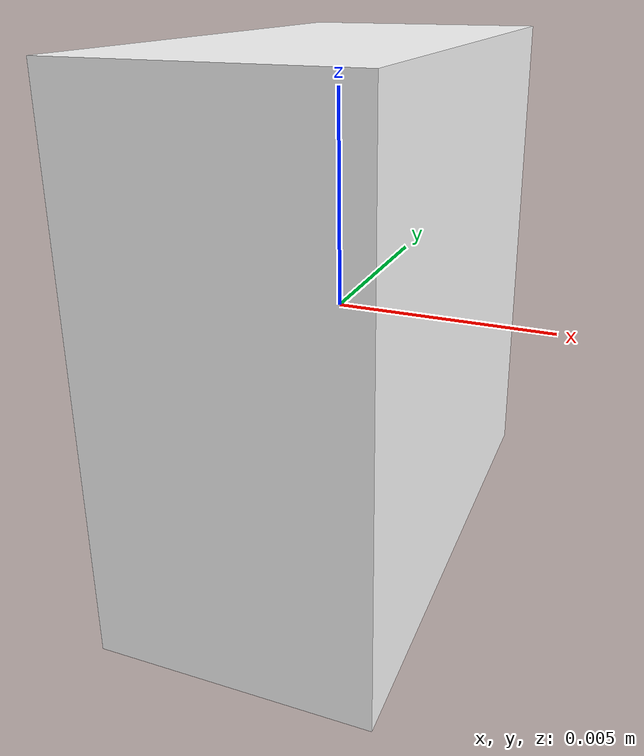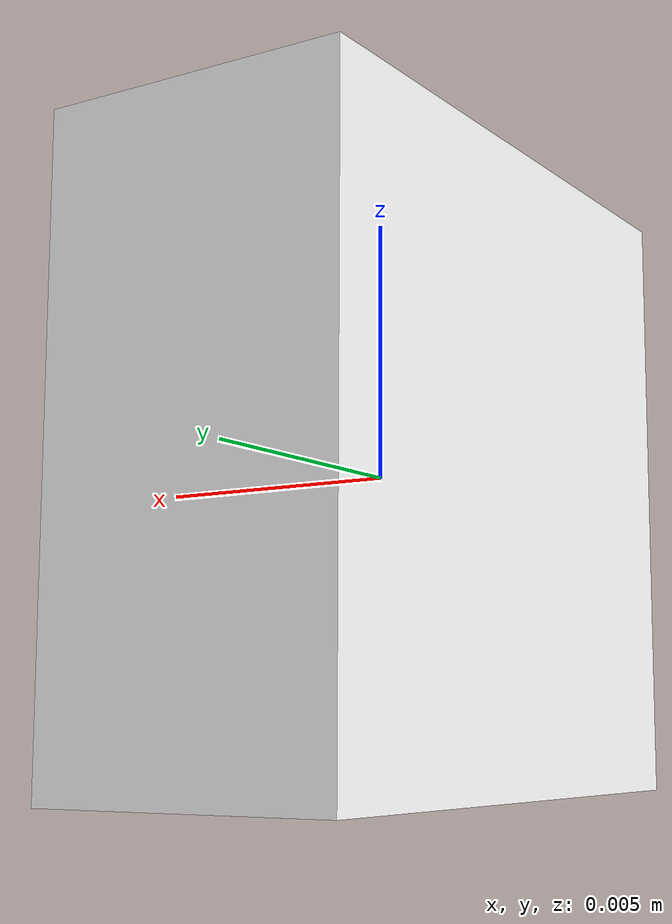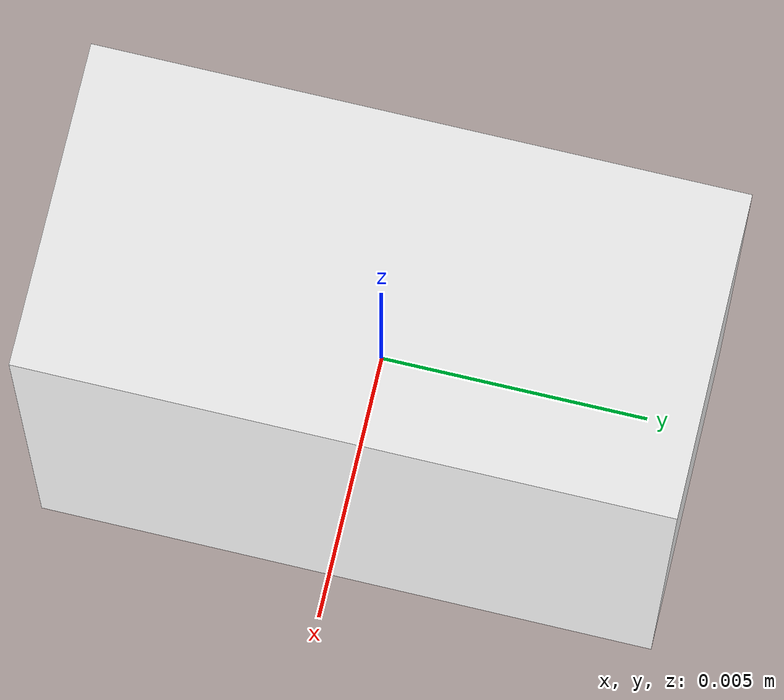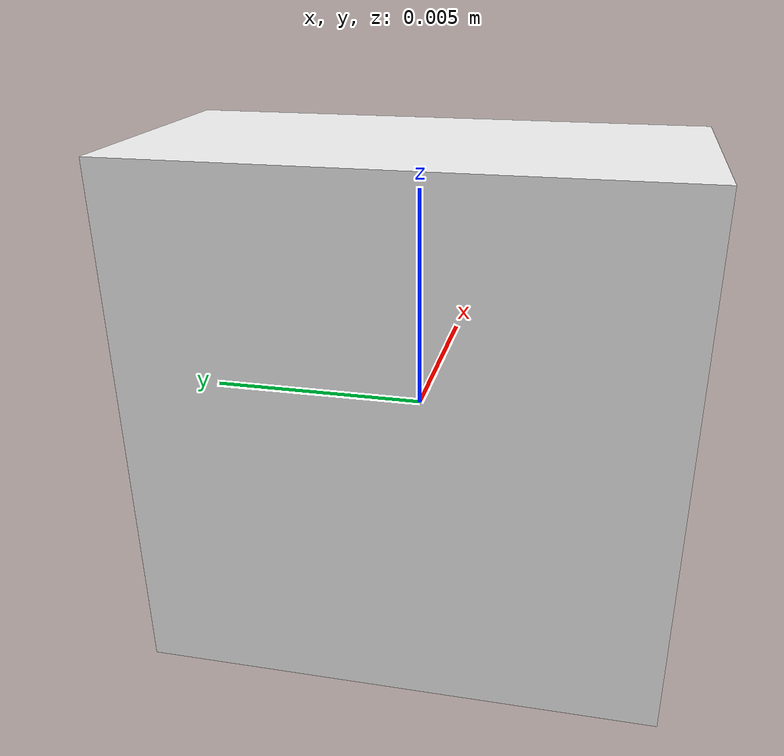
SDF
<?xml version='1.0'?>
<sdf version='1.6'>
  <model name='target_box'>
    <link name='link'>
      <inertial>
        <mass>1</mass>
        <inertia>
          <ixx>0.166667</ixx>
          <ixy>0</ixy>
          <ixz>0</ixz>
          <iyy>0.166667</iyy>
          <iyz>0</iyz>
          <izz>0.166667</izz>
        </inertia>
        <pose frame=''>0 0 0 0 -0 0</pose>
      </inertial>
      <self_collide>0</self_collide>
      <enable_wind>0</enable_wind>
      <kinematic>0</kinematic>
      <pose frame=''>0 0 0 0 -0 0</pose>
      <gravity>1</gravity>
      <visual name='visual'>
        <geometry>
          <mesh>
            <uri>model://target_box/meshes/marker_resized.dae</uri>
            <scale>0.05 0.1 0.1</scale>
          </mesh>
        </geometry>
        <material>
          <lighting>1</lighting>
          <script>
            <uri>model://target_box/materials/scripts</uri>
            <uri>model://target_box/materials/textures</uri>
            <name>target_box/Diffuse</name>
          </script>
          <shader type='vertex'>
            <normal_map>__default__</normal_map>
          </shader>
          <ambient>1 1 1 1</ambient>
          <diffuse>1 1 1 1</diffuse>
          <specular>0 0 0 1</specular>
          <emissive>0 0 0 1</emissive>
        </material>
        <pose frame=''>0 0 0 0 -0 0</pose>
        <transparency>0</transparency>
        <cast_shadows>1</cast_shadows>
      </visual>
      <collision name='collision'>
        <laser_retro>0</laser_retro>
        <max_contacts>10</max_contacts>
        <pose frame=''>0 0 0 0 -0 0</pose>
        <geometry>
          <box>
            <size>0.1 0.2 0.2</size>
          </box>
        </geometry>
        <surface>
          <friction>
            <ode>
              <mu>1</mu>
              <mu2>1</mu2>
              <fdir1>0 0 0</fdir1>
              <slip1>0</slip1>
              <slip2>0</slip2>
            </ode>
            <torsional>
              <coefficient>1</coefficient>
              <patch_radius>0</patch_radius>
              <surface_radius>0</surface_radius>
              <use_patch_radius>1</use_patch_radius>
              <ode>
                <slip>0</slip>
              </ode>
            </torsional>
          </friction>
          <bounce>
            <restitution_coefficient>0</restitution_coefficient>
            <threshold>1e+06</threshold>
          </bounce>
          <contact>
            <collide_without_contact>0</collide_without_contact>
            <collide_without_contact_bitmask>1</collide_without_contact_bitmask>
            <collide_bitmask>1</collide_bitmask>
            <ode>
              <soft_cfm>0</soft_cfm>
              <soft_erp>0.2</soft_erp>
              <kp>1e+13</kp>
              <kd>1</kd>
              <max_vel>0.01</max_vel>
              <min_depth>0</min_depth>
            </ode>
            <bullet>
              <split_impulse>1</split_impulse>
              <split_impulse_penetration_threshold>-0.01</split_impulse_penetration_threshold>
              <soft_cfm>0</soft_cfm>
              <soft_erp>0.2</soft_erp>
              <kp>1e+13</kp>
              <kd>1</kd>
            </bullet>
          </contact>
        </surface>
      </collision>
    </link>
    <static>0</static>
    <allow_auto_disable>1</allow_auto_disable>
  </model>
</sdf>
